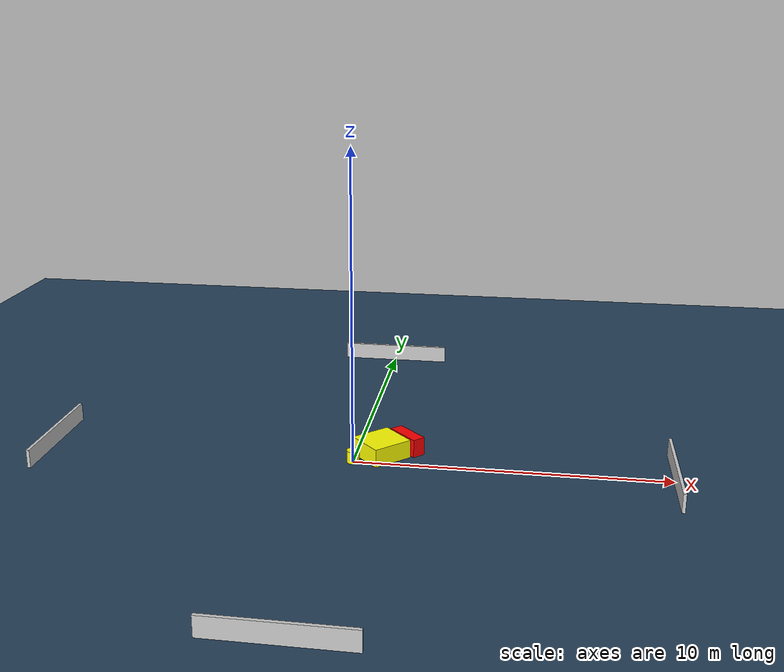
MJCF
<?xml version="1.0" ?>
<mujoco model="generated_environment">
  <option timestep="0.01" integrator="RK4" cone="elliptic"/>
  <default>
    <geom density="1"/>
  </default>
  <asset>
    <texture builtin="gradient" height="3072" name="skybox" rgb1="0.3 0.5 0.7" rgb2="0 0 0" type="skybox" width="512"/>
    <texture builtin="checker" height="300" name="groundplane" rgb1="0.2 0.3 0.4" rgb2="0.1 0.2 0.3" type="2d" width="300"/>
    <material name="groundplane" reflectance="0.2" texrepeat="5 5" texture="groundplane"/>
  </asset>
  <worldbody>
    <light dir="0 0 -1" directional="true" pos="0 0 1.5"/>
    <geom condim="3" friction="0.5 0.005 0.001" material="groundplane" name="floor" pos="0 0 0" size="0 0 0.05" type="plane"/>
    <body name="walls">
      <geom name="wall_1" condim="4" pos="-10.0 0.0 0.3" rgba="0.800000011920929 0.800000011920929 0.800000011920929 1.0" size="0.05 2.0 0.3" type="box"/>
      <geom name="wall_2" condim="4" pos="10.0 0.0 0.3" rgba="0.800000011920929 0.800000011920929 0.800000011920929 1.0" size="0.05 2.0 0.3" type="box"/>
      <geom name="wall_3" condim="4" pos="0.0 -10.0 0.3" rgba="0.800000011920929 0.800000011920929 0.800000011920929 1.0" size="2.0 0.05 0.3" type="box"/>
      <geom name="wall_4" condim="4" pos="0.0 10.0 0.3" rgba="0.800000011920929 0.800000011920929 0.800000011920929 1.0" size="2.0 0.05 0.3" type="box"/>
    </body>
    <body name="robot">
      <joint name="joint_x" type="slide" pos="0 0 0" axis="1 0 0"/>
      <joint name="joint_y" type="slide" pos="0 0 0" axis="0 1 0"/>
      <geom name="robot" type="cylinder" pos="0.0 0.0 0.2" size="0.2 0.2 0.0" mass="5.0" friction="1.0 0.005 0.0001" condim="4" rgba="1.0 1.0 0.0 1.0"/>
    </body>
    <body name="obstacle_1_movable">
      <geom name="obstacle_1_movable" condim="4" pos="0.8322659448274804 0.5950551748516467 0.3" euler="0 0 133.53275380968128" friction="0.0 0.005 0.001" rgba="1.0 1.0 0.0 1.0" size="0.6439896883883275 0.6794040473980335 0.3" type="box" mass="0.1"/>
      <joint type="free"/>
    </body>
    <body name="obstacle_2_static">
      <geom name="obstacle_2_static" condim="4" pos="1.5975073780680322 1.170081051675687 0.3" euler="0 0 314.8291742837531" friction="0.0 0.005 0.001" rgba="1.0 0.0 0.0 1.0" size="0.607967545701401 0.21526191735786754 0.3" type="box"/>
    </body>
  </worldbody>
  <actuator>
    <motor name="actuator_x" joint="joint_x" gear="1" ctrlrange="-1 1"/>
    <motor name="actuator_y" joint="joint_y" gear="1" ctrlrange="-1 1"/>
  </actuator>
</mujoco>
